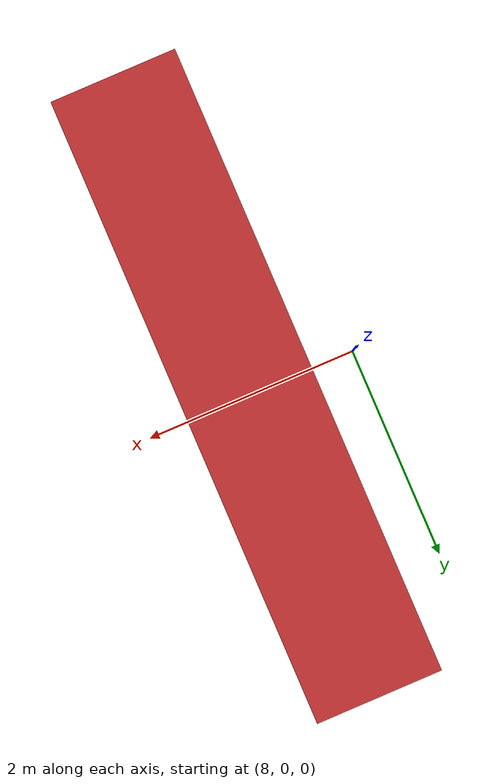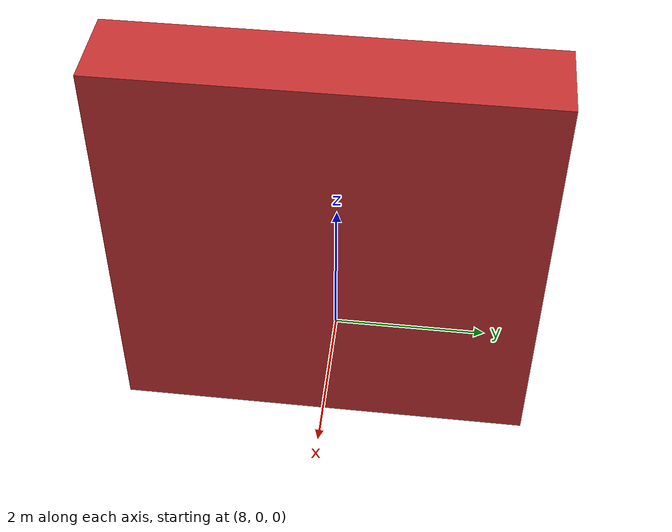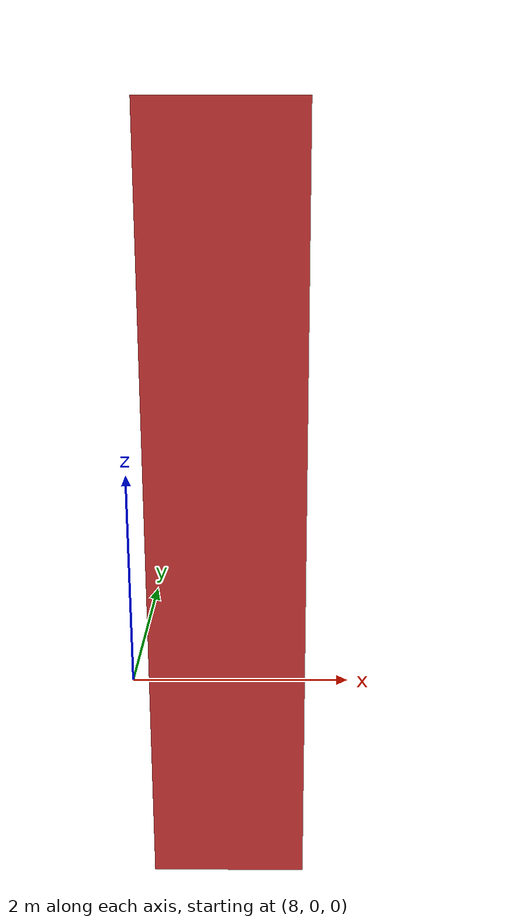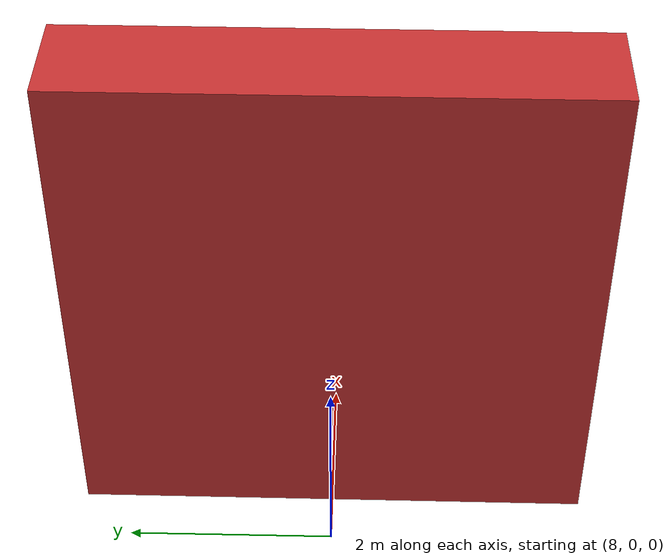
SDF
<?xml version="1.0"?>
<sdf version="1.9">
  <model name="flydrone_wall">
    <static>true</static>
    <pose>9 0 2.5 0 0 0</pose>
    <link name="wall_link">
      <collision name="collision">
        <geometry>
          <box><size>1.0 5.0 5.0</size></box>
        </geometry>
      </collision>
      <visual name="visual">
        <geometry>
          <box><size>1.0 5.0 5.0</size></box>
        </geometry>
        <material>
          <ambient>0.8 0.2 0.2 1</ambient>
          <diffuse>0.8 0.2 0.2 1</diffuse>
        </material>
      </visual>
    </link>
  </model>
</sdf>
